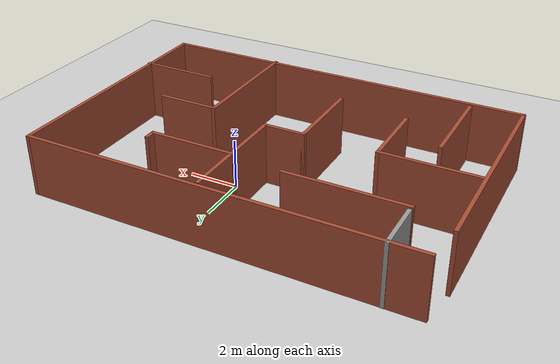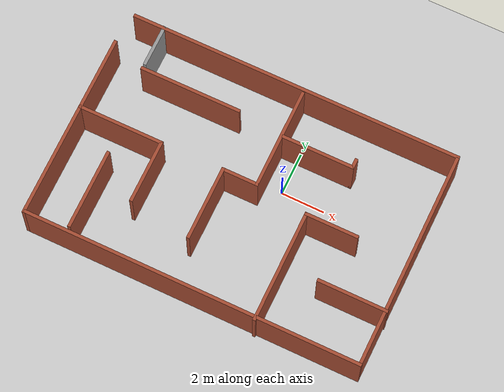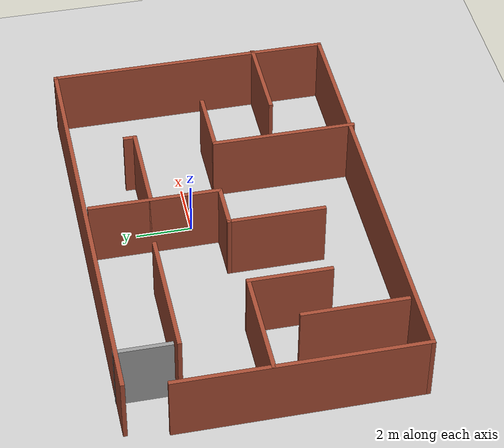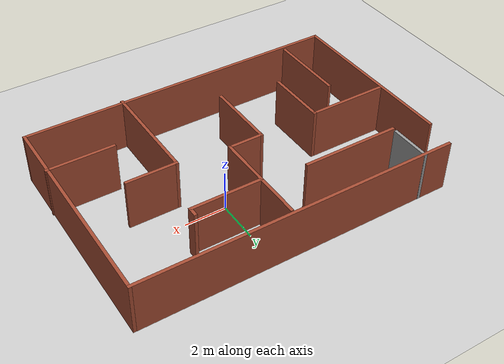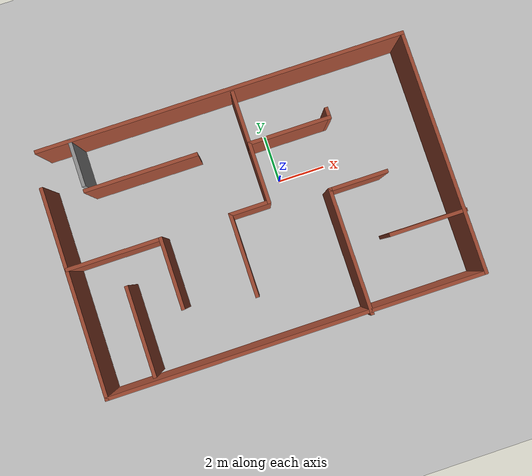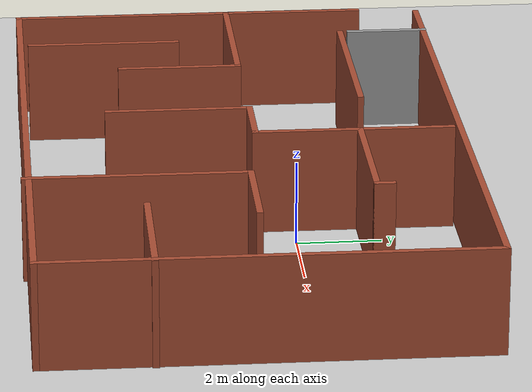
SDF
<sdf version="1.7">
 <world name="default">
  <light name="sun" type="directional">
   <pose>0 0 10 0 -0 0</pose>
   <diffuse>0.8 0.8 0.8 1</diffuse>
   <specular>0.2 0.2 0.2 1</specular>
   <attenuation>
    <range>1000</range>
    <constant>0.9</constant>
    <linear>0.01</linear>
    <quadratic>0.001</quadratic>
   </attenuation>
   <direction>-0.5 0.1 -0.9</direction>
   <spot><inner_angle>0</inner_angle><outer_angle>0</outer_angle><falloff>0</falloff></spot>
  </light>
  <model name="ground_plane">
   <static>1</static>
   <link name="link">
    <collision name="collision">
     <geometry><plane><normal>0 0 1</normal><size>100 100</size></plane></geometry>
     <surface><friction><ode><mu>100</mu><mu2>50</mu2></ode></friction></surface>
    </collision>
    <visual name="visual">
     <cast_shadows>0</cast_shadows>
     <geometry><plane><normal>0 0 1</normal><size>100 100</size></plane></geometry>
     <material>
      <script><uri>file://media/materials/scripts/gazebo.material</uri><name>Gazebo/Grey</name></script>
     </material>
    </visual>
   </link>
  </model>
  <gravity>0 0 -9.8</gravity>
  <magnetic_field>6e-06 2.3e-05 -4.2e-05</magnetic_field>
  <atmosphere type="adiabatic"/>
  <physics type="ode">
   <max_step_size>0.001</max_step_size>
   <real_time_factor>1</real_time_factor>
   <real_time_update_rate>1000</real_time_update_rate>
  </physics>
  <scene><ambient>0.4 0.4 0.4 1</ambient><background>0.7 0.7 0.7 1</background><shadows>1</shadows></scene>
  <audio><device>default</device></audio>
  <spherical_coordinates>
   <surface_model>EARTH_WGS84</surface_model>
   <latitude_deg>0</latitude_deg>
   <longitude_deg>0</longitude_deg>
   <elevation>0</elevation>
   <heading_deg>0</heading_deg>
  </spherical_coordinates>
  <model name="seconf_maze">
   <pose>-1.35902 -1.1933 0 0 -0 0</pose>
   <link name="Wall_35">
    <collision name="Wall_35_Collision">
     <geometry><box><size>15.5 0.15 2.5</size></box></geometry>
     <pose>0 0 1.25 0 -0 0</pose>
    </collision>
    <visual name="Wall_35_Visual">
     <pose>0 0 1.25 0 -0 0</pose>
     <geometry><box><size>15.5 0.15 2.5</size></box></geometry>
     <material>
      <script><uri>file://media/materials/scripts/gazebo.material</uri><name>Gazebo/Bricks</name></script>
      <ambient>1 1 1 1</ambient>
     </material>
     <meta><layer>0</layer></meta>
    </visual>
    <pose>0.10289 5.09081 0 0 -0 3.14159</pose>
   </link>
   <link name="Wall_38">
    <collision name="Wall_38_Collision">
     <geometry><box><size>10.25 0.15 2.5</size></box></geometry>
     <pose>0 0 1.25 0 -0 0</pose>
    </collision>
    <visual name="Wall_38_Visual">
     <pose>0 0 1.25 0 -0 0</pose>
     <geometry><box><size>10.25 0.15 2.5</size></box></geometry>
     <material>
      <script><uri>file://media/materials/scripts/gazebo.material</uri><name>Gazebo/Bricks</name></script>
      <ambient>1 1 1 1</ambient>
     </material>
     <meta><layer>0</layer></meta>
    </visual>
    <pose>7.77789 0.040812 0 0 -0 -1.5708</pose>
   </link>
   <link name="Wall_39">
    <collision name="Wall_39_Collision">
     <geometry><box><size>15.75 0.15 2.5</size></box></geometry>
     <pose>0 0 1.25 0 -0 0</pose>
    </collision>
    <visual name="Wall_39_Visual">
     <pose>0 0 1.25 0 -0 0</pose>
     <geometry><box><size>15.75 0.15 2.5</size></box></geometry>
     <material>
      <script><uri>file://media/materials/scripts/gazebo.material</uri><name>Gazebo/Bricks</name></script>
      <ambient>1 1 1 1</ambient>
     </material>
     <meta><layer>0</layer></meta>
    </visual>
    <pose>-0.02211 -5.00919 0 0 -0 3.14159</pose>
   </link>
   <link name="Wall_40">
    <collision name="Wall_40_Collision">
     <geometry><box><size>8.75 0.15 2.5</size></box></geometry>
     <pose>0 0 1.25 0 -0 0</pose>
    </collision>
    <visual name="Wall_40_Visual">
     <pose>0 0 1.25 0 -0 0</pose>
     <geometry><box><size>8.75 0.15 2.5</size></box></geometry>
     <material>
      <script><uri>file://media/materials/scripts/gazebo.material</uri><name>Gazebo/Bricks</name></script>
      <ambient>1 1 1 1</ambient>
     </material>
     <meta><layer>0</layer></meta>
    </visual>
    <pose>-7.82211 -0.709188 0 0 -0 1.5708</pose>
   </link>
   <link name="Wall_42">
    <collision name="Wall_42_Collision">
     <geometry><box><size>4.75 0.15 2.5</size></box></geometry>
     <pose>0 0 1.25 0 -0 0</pose>
    </collision>
    <visual name="Wall_42_Visual">
     <pose>0 0 1.25 0 -0 0</pose>
     <geometry><box><size>4.75 0.15 2.5</size></box></geometry>
     <material>
      <script><uri>file://media/materials/scripts/gazebo.material</uri><name>Gazebo/Bricks</name></script>
      <ambient>1 1 1 1</ambient>
     </material>
     <meta><layer>0</layer></meta>
    </visual>
    <pose>-3.89301 3.00128 0 0 -0 0</pose>
   </link>
   <link name="Wall_45">
    <collision name="Wall_45_Collision">
     <geometry><box><size>2 0.15 2.5</size></box></geometry>
     <pose>0 0 1.25 0 -0 0</pose>
    </collision>
    <visual name="Wall_45_Visual">
     <pose>0 0 1.25 0 -0 0</pose>
     <geometry><box><size>2 0.15 2.5</size></box></geometry>
     <material>
      <script><uri>file://media/materials/scripts/gazebo.material</uri><name>Gazebo/Grey</name></script>
      <ambient>1 1 1 1</ambient>
     </material>
     <meta><layer>0</layer></meta>
    </visual>
    <pose>-6.19301 4.17717 0 0 -0 -1.5708</pose>
   </link>
   <link name="Wall_47">
    <collision name="Wall_47_Collision">
     <geometry><box><size>4 0.15 2.5</size></box></geometry>
     <pose>0 0 1.25 0 -0 0</pose>
    </collision>
    <visual name="Wall_47_Visual">
     <pose>0 0 1.25 0 -0 0</pose>
     <geometry><box><size>4 0.15 2.5</size></box></geometry>
     <material>
      <script><uri>file://media/materials/scripts/gazebo.material</uri><name>Gazebo/Bricks</name></script>
      <ambient>1 1 1 1</ambient>
     </material>
     <meta><layer>0</layer></meta>
    </visual>
    <pose>-5.86869 0.250107 0 0 -0 0</pose>
   </link>
   <link name="Wall_48">
    <collision name="Wall_48_Collision">
     <geometry><box><size>3 0.15 2.5</size></box></geometry>
     <pose>0 0 1.25 0 -0 0</pose>
    </collision>
    <visual name="Wall_48_Visual">
     <pose>0 0 1.25 0 -0 0</pose>
     <geometry><box><size>3 0.15 2.5</size></box></geometry>
     <material>
      <script><uri>file://media/materials/scripts/gazebo.material</uri><name>Gazebo/Bricks</name></script>
      <ambient>1 1 1 1</ambient>
     </material>
     <meta><layer>0</layer></meta>
    </visual>
    <pose>-3.94369 -1.17489 0 0 -0 -1.5708</pose>
   </link>
   <link name="Wall_50">
    <collision name="Wall_50_Collision">
     <geometry><box><size>3.75 0.15 2.5</size></box></geometry>
     <pose>0 0 1.25 0 -0 0</pose>
    </collision>
    <visual name="Wall_50_Visual">
     <pose>0 0 1.25 0 -0 0</pose>
     <geometry><box><size>3.75 0.15 2.5</size></box></geometry>
     <material>
      <script><uri>file://media/materials/scripts/gazebo.material</uri><name>Gazebo/Bricks</name></script>
      <ambient>1 1 1 1</ambient>
     </material>
     <meta><layer>0</layer></meta>
    </visual>
    <pose>-5.79284 -2.95049 0 0 -0 -1.5708</pose>
   </link>
   <link name="Wall_52">
    <collision name="Wall_52_Collision">
     <geometry><box><size>4.75 0.15 2.5</size></box></geometry>
     <pose>0 0 1.25 0 -0 0</pose>
    </collision>
    <visual name="Wall_52_Visual">
     <pose>0 0 1.25 0 -0 0</pose>
     <geometry><box><size>4.75 0.15 2.5</size></box></geometry>
     <material>
      <script><uri>file://media/materials/scripts/gazebo.material</uri><name>Gazebo/Bricks</name></script>
      <ambient>1 1 1 1</ambient>
     </material>
     <meta><layer>0</layer></meta>
    </visual>
    <pose>0.559871 2.60013 0 0 -0 1.5708</pose>
   </link>
   <link name="Wall_54">
    <collision name="Wall_54_Collision">
     <geometry><box><size>5.25 0.15 2.5</size></box></geometry>
     <pose>0 0 1.25 0 -0 0</pose>
    </collision>
    <visual name="Wall_54_Visual">
     <pose>0 0 1.25 0 -0 0</pose>
     <geometry><box><size>5.25 0.15 2.5</size></box></geometry>
     <material>
      <script><uri>file://media/materials/scripts/gazebo.material</uri><name>Gazebo/Bricks</name></script>
      <ambient>1 1 1 1</ambient>
     </material>
     <meta><layer>0</layer></meta>
    </visual>
    <pose>3.01092 -2.55217 0 0 -0 1.5708</pose>
   </link>
   <link name="Wall_55">
    <collision name="Wall_55_Collision">
     <geometry><box><size>2.5 0.15 2.5</size></box></geometry>
     <pose>0 0 1.25 0 -0 0</pose>
    </collision>
    <visual name="Wall_55_Visual">
     <pose>0 0 1.25 0 -0 0</pose>
     <geometry><box><size>2.5 0.15 2.5</size></box></geometry>
     <material>
      <script><uri>file://media/materials/scripts/gazebo.material</uri><name>Gazebo/Bricks</name></script>
      <ambient>1 1 1 1</ambient>
     </material>
     <meta><layer>0</layer></meta>
    </visual>
    <pose>4.18592 -0.002174 0 0 -0 0</pose>
   </link>
   <link name="Wall_57">
    <collision name="Wall_57_Collision">
     <geometry><box><size>3.5 0.15 2.5</size></box></geometry>
     <pose>0 0 1.25 0 -0 0</pose>
    </collision>
    <visual name="Wall_57_Visual">
     <pose>0 0 1.25 0 -0 0</pose>
     <geometry><box><size>3.5 0.15 2.5</size></box></geometry>
     <material>
      <script><uri>file://media/materials/scripts/gazebo.material</uri><name>Gazebo/Bricks</name></script>
      <ambient>1 1 1 1</ambient>
     </material>
     <meta><layer>0</layer></meta>
    </visual>
    <pose>2.23487 2.75117 0 0 -0 0</pose>
   </link>
   <link name="Wall_58">
    <collision name="Wall_58_Collision">
     <geometry><box><size>0.5 0.15 2.5</size></box></geometry>
     <pose>0 0 1.25 0 -0 0</pose>
    </collision>
    <visual name="Wall_58_Visual">
     <pose>0 0 1.25 0 -0 0</pose>
     <geometry><box><size>0.5 0.15 2.5</size></box></geometry>
     <material>
      <script><uri>file://media/materials/scripts/gazebo.material</uri><name>Gazebo/Bricks</name></script>
      <ambient>1 1 1 1</ambient>
     </material>
     <meta><layer>0</layer></meta>
    </visual>
    <pose>3.90987 2.92617 0 0 -0 1.5708</pose>
   </link>
   <link name="Wall_61">
    <collision name="Wall_61_Collision">
     <geometry><box><size>1.75 0.15 2.5</size></box></geometry>
     <pose>0 0 1.25 0 -0 0</pose>
    </collision>
    <visual name="Wall_61_Visual">
     <pose>0 0 1.25 0 -0 0</pose>
     <geometry><box><size>1.75 0.15 2.5</size></box></geometry>
     <material>
      <script><uri>file://media/materials/scripts/gazebo.material</uri><name>Gazebo/Bricks</name></script>
      <ambient>1 1 1 1</ambient>
     </material>
     <meta><layer>0</layer></meta>
    </visual>
    <pose>-0.240129 0.300128 0 0 -0 3.14159</pose>
   </link>
   <link name="Wall_62">
    <collision name="Wall_62_Collision">
     <geometry><box><size>3.5 0.15 2.5</size></box></geometry>
     <pose>0 0 1.25 0 -0 0</pose>
    </collision>
    <visual name="Wall_62_Visual">
     <pose>0 0 1.25 0 -0 0</pose>
     <geometry><box><size>3.5 0.15 2.5</size></box></geometry>
     <material>
      <script><uri>file://media/materials/scripts/gazebo.material</uri><name>Gazebo/Bricks</name></script>
      <ambient>1 1 1 1</ambient>
     </material>
     <meta><layer>0</layer></meta>
    </visual>
    <pose>-1.04013 -1.37487 0 0 -0 -1.5708</pose>
   </link>
   <link name="Wall_64">
    <collision name="Wall_64_Collision">
     <geometry><box><size>3.25 0.15 2.5</size></box></geometry>
     <pose>0 0 1.25 0 -0 0</pose>
    </collision>
    <visual name="Wall_64_Visual">
     <pose>0 0 1.25 0 -0 0</pose>
     <geometry><box><size>3.25 0.15 2.5</size></box></geometry>
     <material>
      <script><uri>file://media/materials/scripts/gazebo.material</uri><name>Gazebo/Bricks</name></script>
      <ambient>1 1 1 1</ambient>
     </material>
     <meta><layer>0</layer></meta>
    </visual>
    <pose>6.27211 -2.43838 0 0 -0 0</pose>
   </link>
   <static>1</static>
  </model>
 </world>
</sdf>
